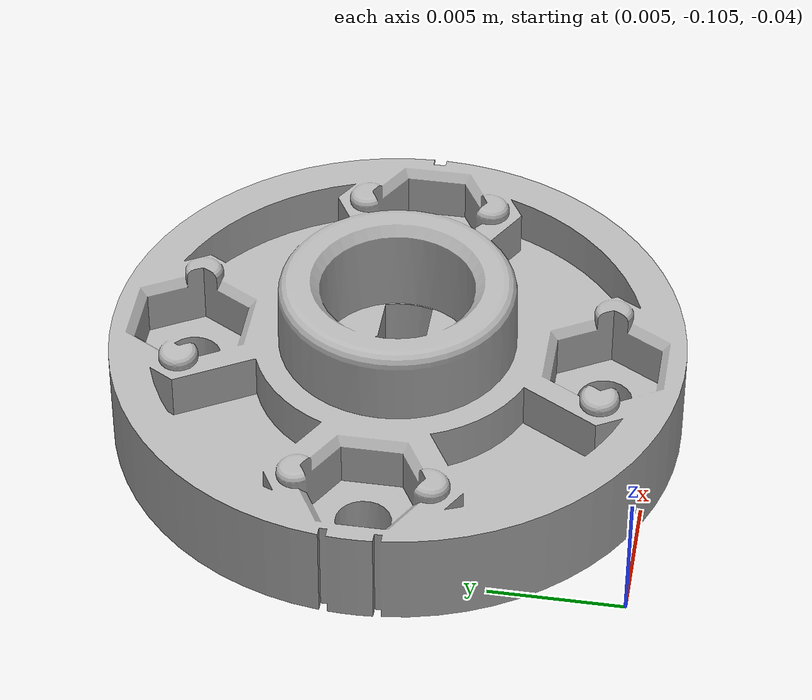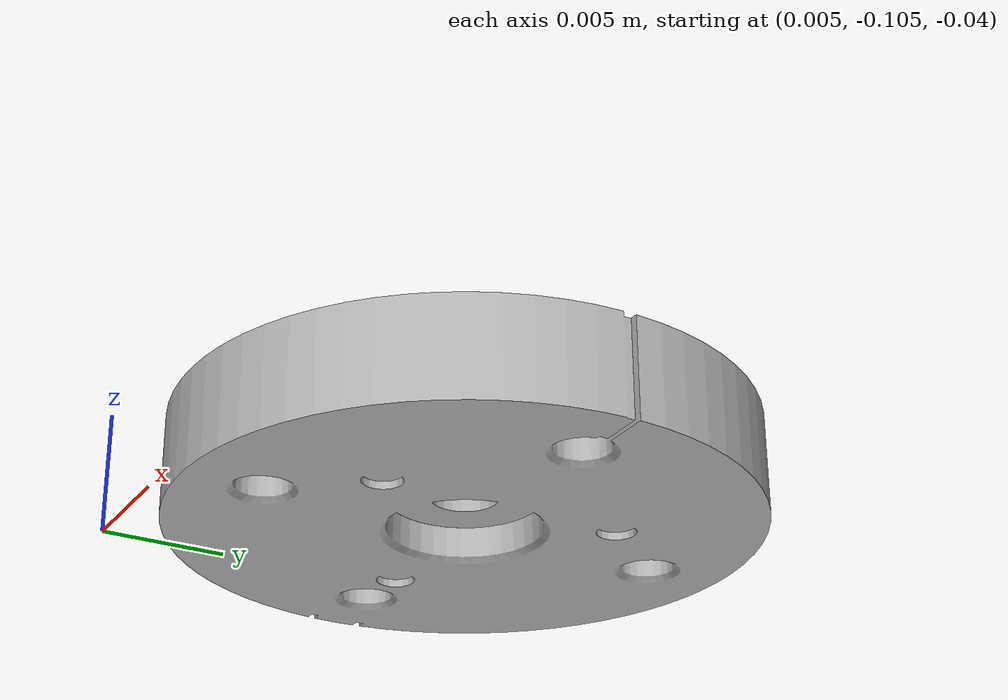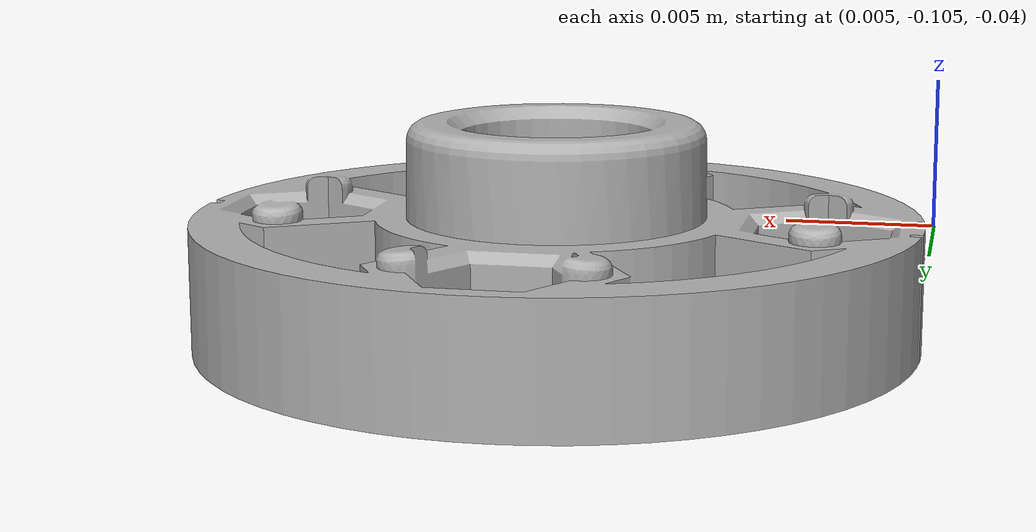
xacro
<?xml version="1.0" ?>
<robot name="gripperv4" xmlns:xacro="http://www.ros.org/wiki/xacro">

<xacro:include filename="$(find gripperv4_description)/urdf/materials.xacro" />
<xacro:include filename="$(find gripperv4_description)/urdf/gripperv4.trans" />
<xacro:include filename="$(find gripperv4_description)/urdf/gripperv4.gazebo" />
<link name="base_link">
  <inertial>
    <origin rpy="0 0 0" xyz="0.015992653974593474 -0.09499999997498743 -0.03998251234194585"/>
    <mass value="0.00932927990443601"/>
    <inertia ixx="0.0" ixy="0.0" ixz="0.0" iyy="0.0" iyz="-0.0" izz="1e-06"/>
  </inertial>
  <visual>
    <origin rpy="0 0 0" xyz="0 0 0"/>
    <geometry>
      <mesh filename="package://gripperv4_description/meshes/base_link.stl" scale="0.001 0.001 0.001"/>
    </geometry>
    <material name="silver"/>
  </visual>
  <collision>
    <origin rpy="0 0 0" xyz="0 0 0"/>
    <geometry>
      <mesh filename="package://gripperv4_description/meshes/base_link.stl" scale="0.001 0.001 0.001"/>
    </geometry>
  </collision>
</link>

</robot>

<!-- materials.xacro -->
<robot name="gripperv4" xmlns:xacro="http://www.ros.org/wiki/xacro" >

<material name="silver">
  <color rgba="0.700 0.700 0.700 1.000"/>
</material>

</robot>

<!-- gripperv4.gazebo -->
<robot name="gripperv4" xmlns:xacro="http://www.ros.org/wiki/xacro" >

<xacro:property name="body_color" value="Gazebo/Silver" />

<gazebo>
  <plugin filename="libgazebo_ros_control.so" name="control"/>
</gazebo>
<gazebo reference="base_link">
  <material>${body_color}</material>
  <mu1>0.2</mu1>
  <mu2>0.2</mu2>
  <selfCollide>true</selfCollide>
  <gravity>true</gravity>
</gazebo>

</robot>
